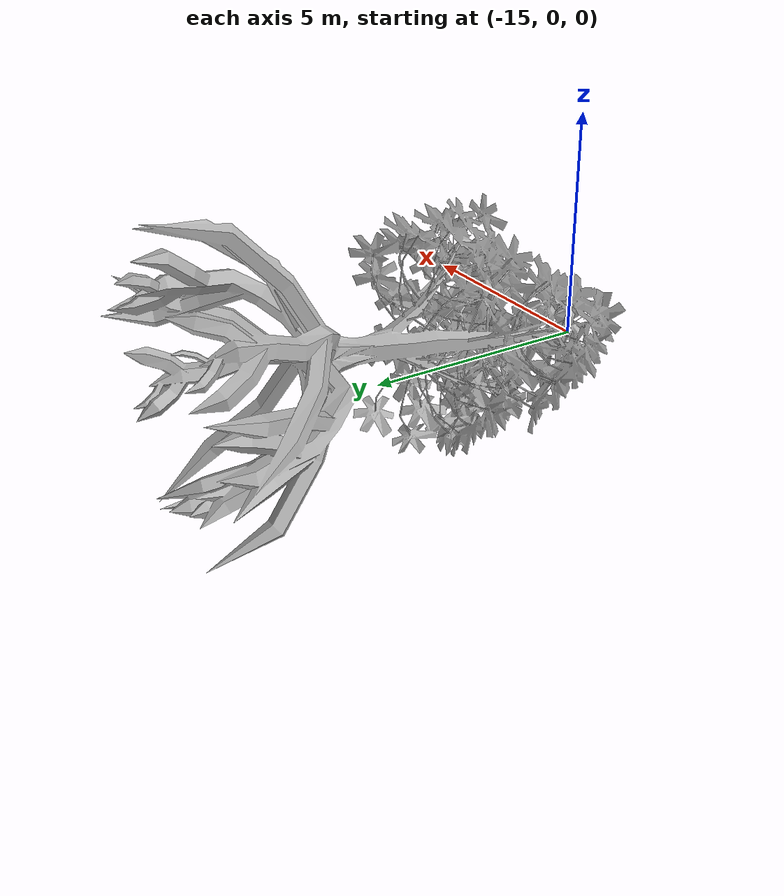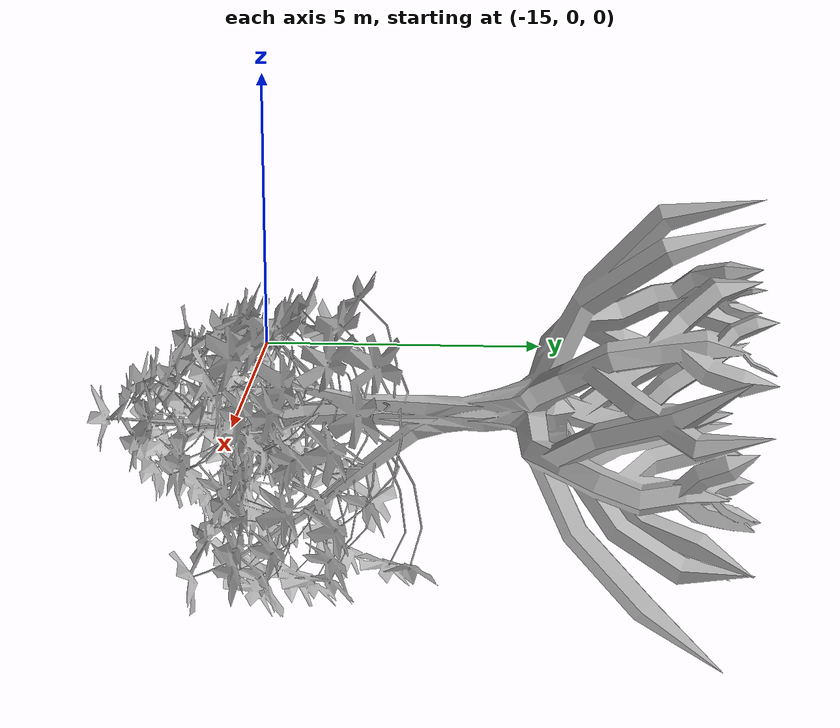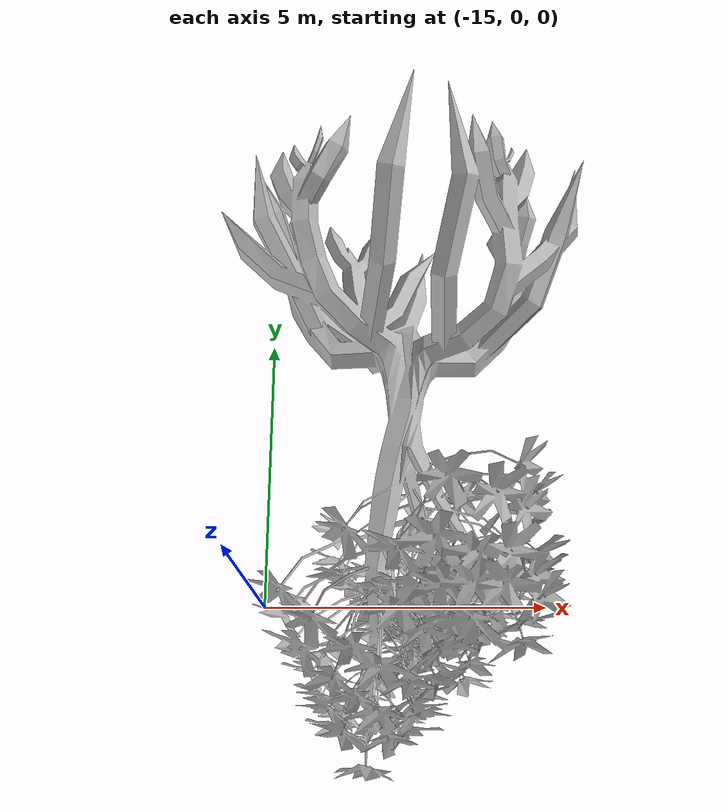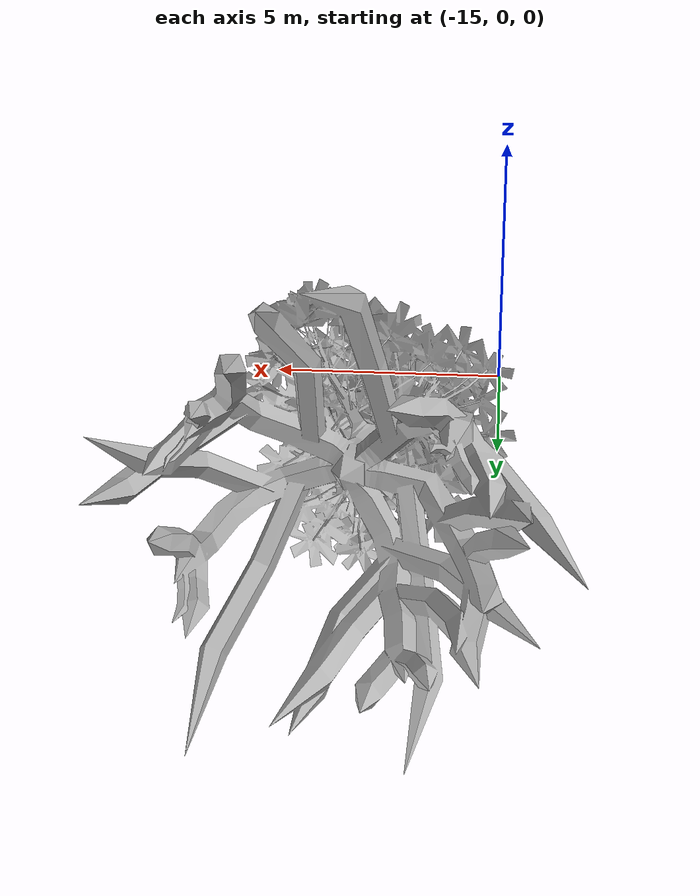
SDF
<?xml version="1.0" ?>
<sdf version="1.10">
  <model name="mangrove_08_12m">
    <pose>0 0 0 0 0 0</pose>
    <static>true</static>
    <link name="visual_only_link">
      <!-- Terrain at (14, 7) is approximately 0.03 m above world zero. -->
      <pose>-12.255 7.998 -0.20 1.5708 0 0</pose>
      <visual name="imported_mangrove_visual"><geometry><mesh><uri>model://mangrove_imported/meshes/Mangrovetree.glb</uri><scale>4.3 4.3 4.3</scale></mesh></geometry></visual>
    </link>
    <!-- The converted GLB mesh is the authoritative visual and collision geometry. -->
    <!-- A mesh collision is used so Gazebo physics and LiDAR can detect the tree shape. -->
    <link name="glb_collision_link">
      <pose>0 0 0.825 0 0 0</pose>
      <collision name="glb_mesh_collision">
        <geometry><cylinder><radius>1.05</radius><length>4.4</length></cylinder></geometry>
      </collision>
    </link>
  </model>
</sdf>
